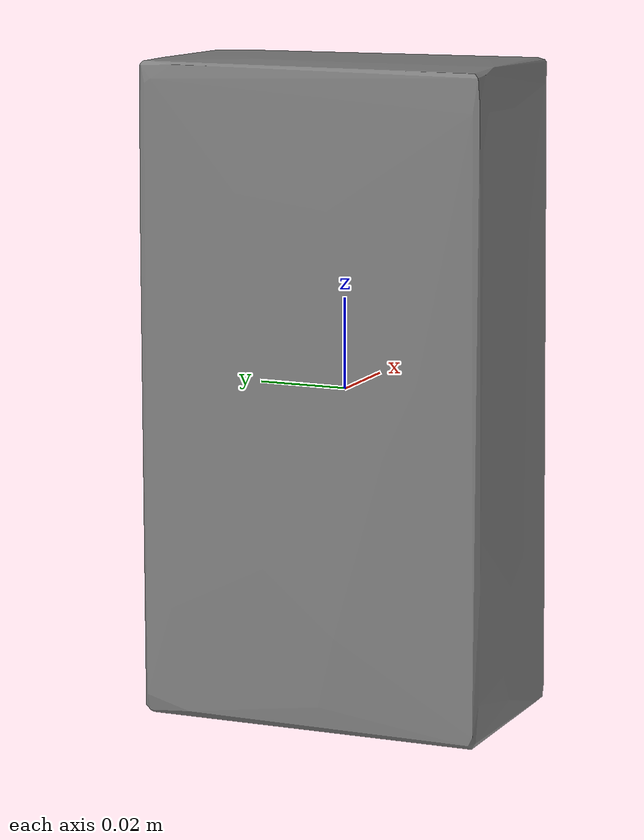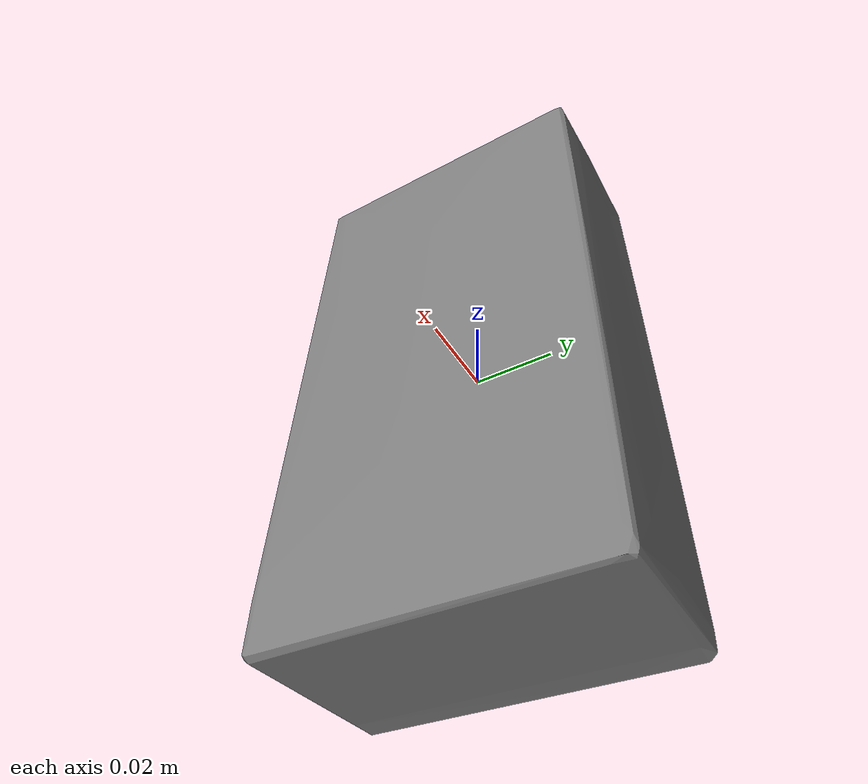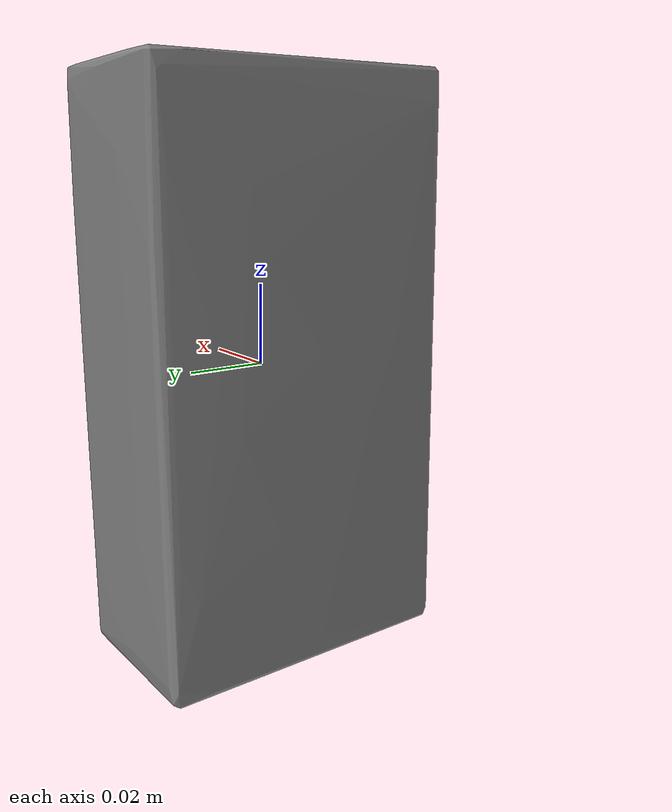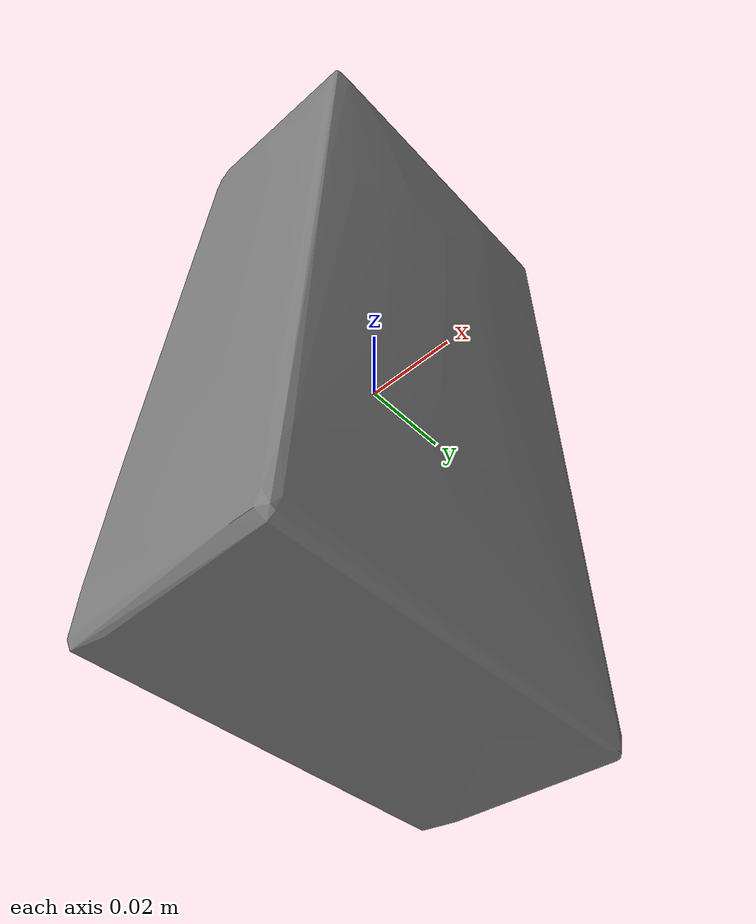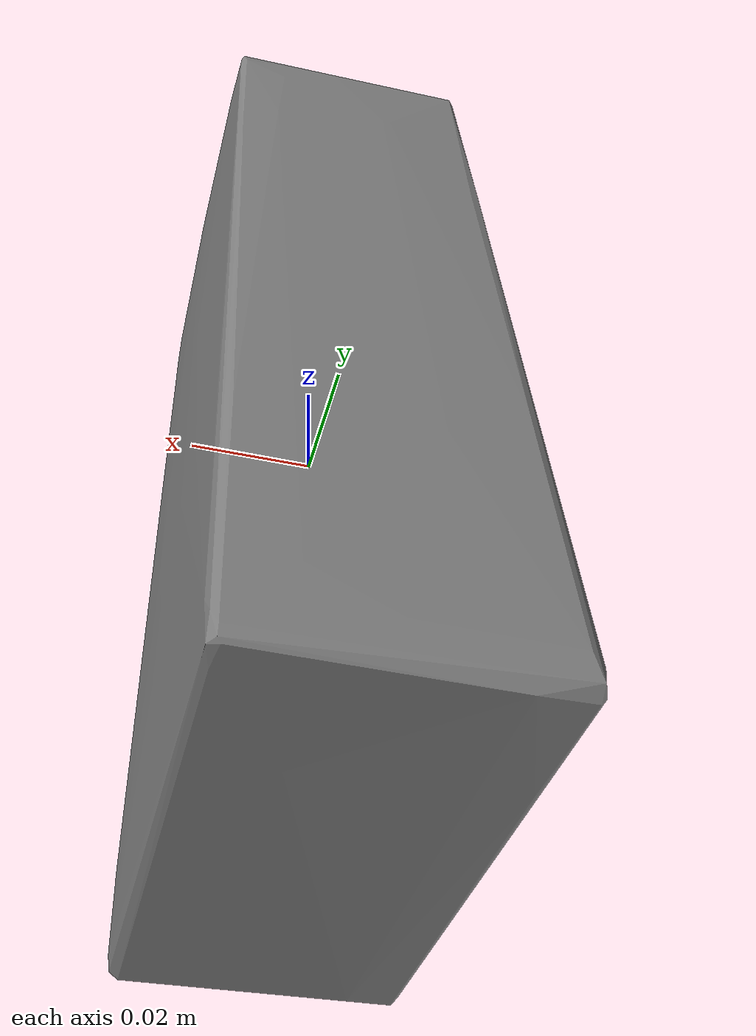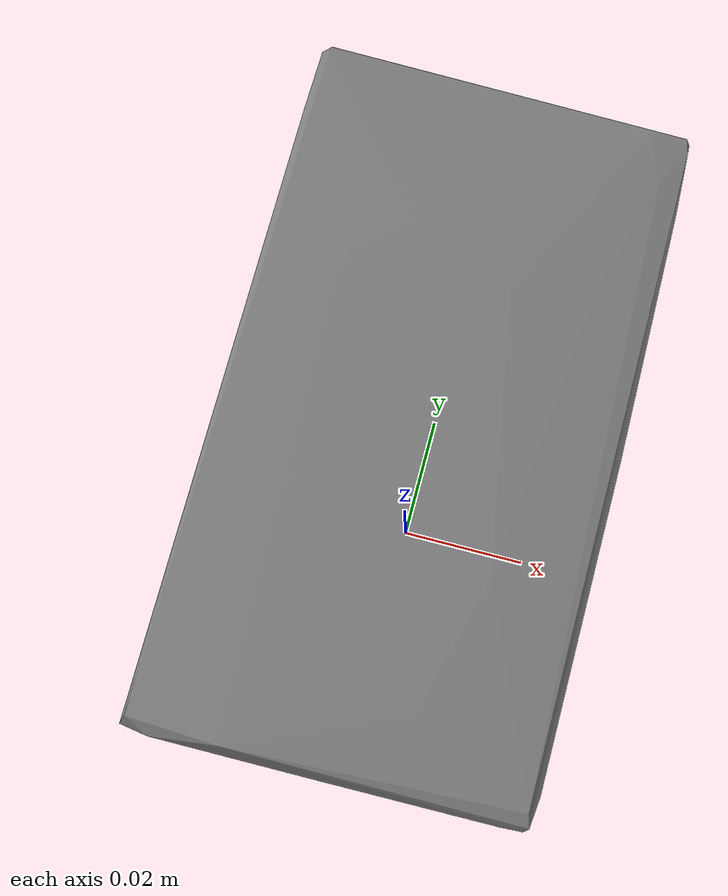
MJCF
<mujoco model="box_Just_For_Men_Mustache_Beard_Brushin_Hair_Color_Gel_Kit_Jet_Black_M60_M">
  <default>
    <default class="visual">
      <geom group="2" type="mesh" contype="0" conaffinity="0" />
    </default>
    <default class="collision">
      <geom group="3" type="mesh" />
    </default>
  </default>
  <asset>
    <mesh file="box_Just_For_Men_Mustache_Beard_Brushin_Hair_Color_Gel_Kit_Jet_Black_M60_M.stl" />
    <mesh file="box_Just_For_Men_Mustache_Beard_Brushin_Hair_Color_Gel_Kit_Jet_Black_M60_M_collision_0.stl" />
    <mesh file="box_Just_For_Men_Mustache_Beard_Brushin_Hair_Color_Gel_Kit_Jet_Black_M60_M_collision_1.stl" />
    <mesh file="box_Just_For_Men_Mustache_Beard_Brushin_Hair_Color_Gel_Kit_Jet_Black_M60_M_collision_2.stl" />
    <mesh file="box_Just_For_Men_Mustache_Beard_Brushin_Hair_Color_Gel_Kit_Jet_Black_M60_M_collision_3.stl" />
    <mesh file="box_Just_For_Men_Mustache_Beard_Brushin_Hair_Color_Gel_Kit_Jet_Black_M60_M_collision_4.stl" />
    <mesh file="box_Just_For_Men_Mustache_Beard_Brushin_Hair_Color_Gel_Kit_Jet_Black_M60_M_collision_5.stl" />
    <mesh file="box_Just_For_Men_Mustache_Beard_Brushin_Hair_Color_Gel_Kit_Jet_Black_M60_M_collision_6.stl" />
    <mesh file="box_Just_For_Men_Mustache_Beard_Brushin_Hair_Color_Gel_Kit_Jet_Black_M60_M_collision_7.stl" />
    <mesh file="box_Just_For_Men_Mustache_Beard_Brushin_Hair_Color_Gel_Kit_Jet_Black_M60_M_collision_8.stl" />
    <mesh file="box_Just_For_Men_Mustache_Beard_Brushin_Hair_Color_Gel_Kit_Jet_Black_M60_M_collision_9.stl" />
    <mesh file="box_Just_For_Men_Mustache_Beard_Brushin_Hair_Color_Gel_Kit_Jet_Black_M60_M_collision_10.stl" />
    <mesh file="box_Just_For_Men_Mustache_Beard_Brushin_Hair_Color_Gel_Kit_Jet_Black_M60_M_collision_11.stl" />
    <mesh file="box_Just_For_Men_Mustache_Beard_Brushin_Hair_Color_Gel_Kit_Jet_Black_M60_M_collision_12.stl" />
    <mesh file="box_Just_For_Men_Mustache_Beard_Brushin_Hair_Color_Gel_Kit_Jet_Black_M60_M_collision_13.stl" />
    <mesh file="box_Just_For_Men_Mustache_Beard_Brushin_Hair_Color_Gel_Kit_Jet_Black_M60_M_collision_14.stl" />
    <mesh file="box_Just_For_Men_Mustache_Beard_Brushin_Hair_Color_Gel_Kit_Jet_Black_M60_M_collision_15.stl" />
  </asset>
  <worldbody>
    <body name="box_Just_For_Men_Mustache_Beard_Brushin_Hair_Color_Gel_Kit_Jet_Black_M60_M">
      <geom mesh="box_Just_For_Men_Mustache_Beard_Brushin_Hair_Color_Gel_Kit_Jet_Black_M60_M" class="visual" />
      <geom mesh="box_Just_For_Men_Mustache_Beard_Brushin_Hair_Color_Gel_Kit_Jet_Black_M60_M_collision_0" class="collision" />
      <geom mesh="box_Just_For_Men_Mustache_Beard_Brushin_Hair_Color_Gel_Kit_Jet_Black_M60_M_collision_1" class="collision" />
      <geom mesh="box_Just_For_Men_Mustache_Beard_Brushin_Hair_Color_Gel_Kit_Jet_Black_M60_M_collision_2" class="collision" />
      <geom mesh="box_Just_For_Men_Mustache_Beard_Brushin_Hair_Color_Gel_Kit_Jet_Black_M60_M_collision_3" class="collision" />
      <geom mesh="box_Just_For_Men_Mustache_Beard_Brushin_Hair_Color_Gel_Kit_Jet_Black_M60_M_collision_4" class="collision" />
      <geom mesh="box_Just_For_Men_Mustache_Beard_Brushin_Hair_Color_Gel_Kit_Jet_Black_M60_M_collision_5" class="collision" />
      <geom mesh="box_Just_For_Men_Mustache_Beard_Brushin_Hair_Color_Gel_Kit_Jet_Black_M60_M_collision_6" class="collision" />
      <geom mesh="box_Just_For_Men_Mustache_Beard_Brushin_Hair_Color_Gel_Kit_Jet_Black_M60_M_collision_7" class="collision" />
      <geom mesh="box_Just_For_Men_Mustache_Beard_Brushin_Hair_Color_Gel_Kit_Jet_Black_M60_M_collision_8" class="collision" />
      <geom mesh="box_Just_For_Men_Mustache_Beard_Brushin_Hair_Color_Gel_Kit_Jet_Black_M60_M_collision_9" class="collision" />
      <geom mesh="box_Just_For_Men_Mustache_Beard_Brushin_Hair_Color_Gel_Kit_Jet_Black_M60_M_collision_10" class="collision" />
      <geom mesh="box_Just_For_Men_Mustache_Beard_Brushin_Hair_Color_Gel_Kit_Jet_Black_M60_M_collision_11" class="collision" />
      <geom mesh="box_Just_For_Men_Mustache_Beard_Brushin_Hair_Color_Gel_Kit_Jet_Black_M60_M_collision_12" class="collision" />
      <geom mesh="box_Just_For_Men_Mustache_Beard_Brushin_Hair_Color_Gel_Kit_Jet_Black_M60_M_collision_13" class="collision" />
      <geom mesh="box_Just_For_Men_Mustache_Beard_Brushin_Hair_Color_Gel_Kit_Jet_Black_M60_M_collision_14" class="collision" />
      <geom mesh="box_Just_For_Men_Mustache_Beard_Brushin_Hair_Color_Gel_Kit_Jet_Black_M60_M_collision_15" class="collision" />
    </body>
  </worldbody>
</mujoco>
